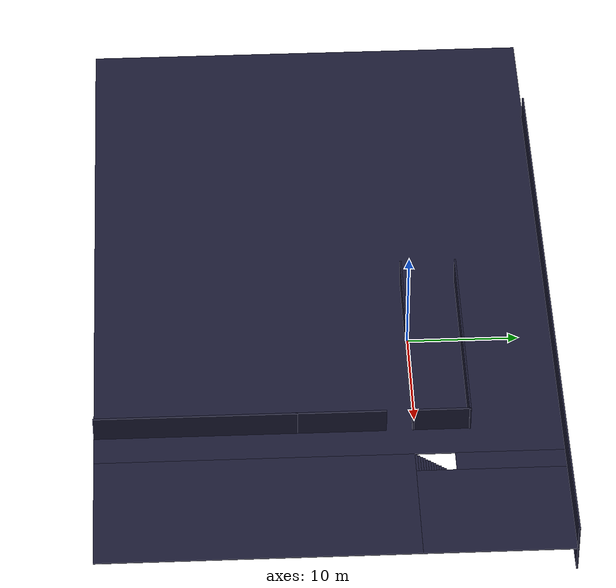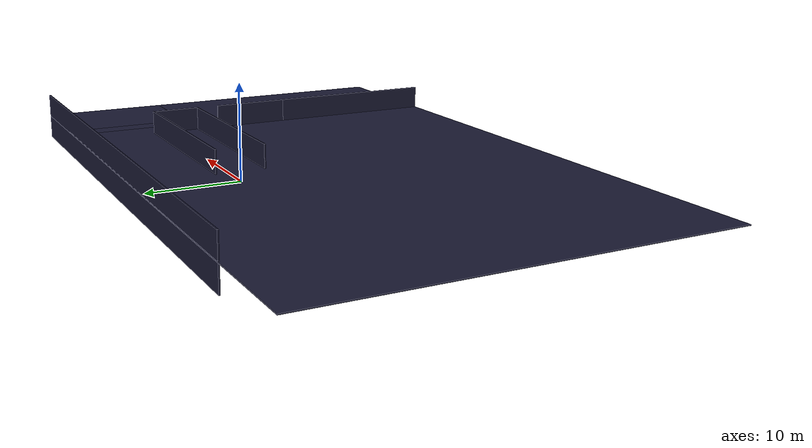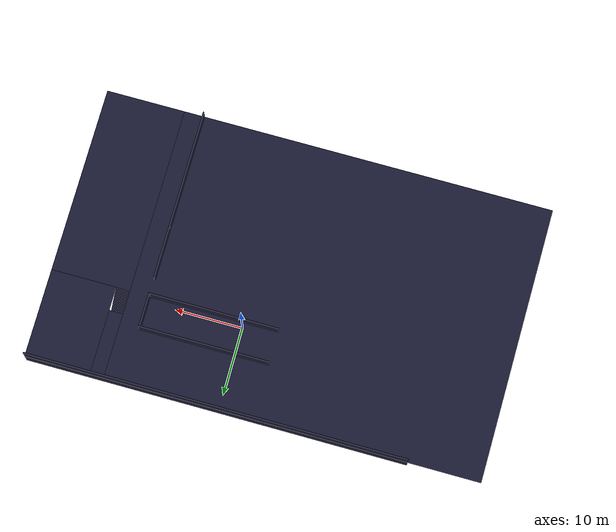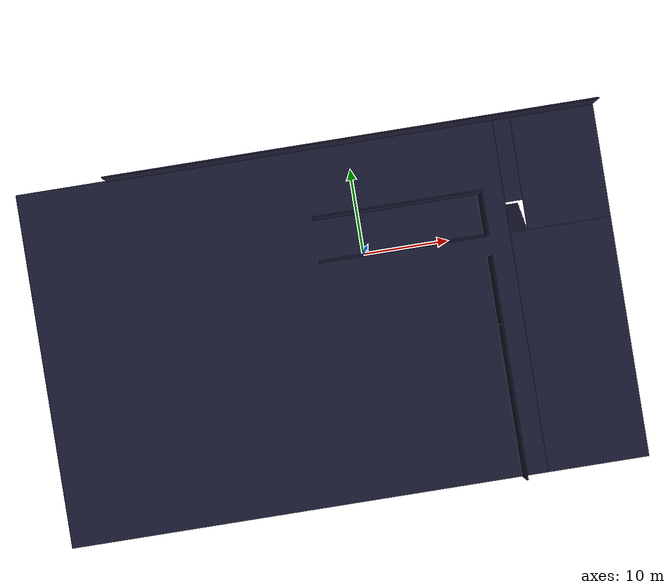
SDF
<sdf version="1.7">
 <model name="2ndo_andar_passarela_escadas_v4">
  <pose>-4.9719 -7.73678 0 0 -0 0</pose>
  <link name="Floor_2">
   <pose>0 0 2.5 0 -0 0</pose>
   <visual name="Floor_2_Visual_0">
    <pose>-5.84149 0 0.05 0 -0 0</pose>
    <geometry><box><size>55.2168 40.95 0.1</size></box></geometry>
    <material>
     <script><uri>file://media/materials/scripts/gazebo.material</uri><name>Gazebo/Grey</name></script>
     <ambient>0.1 0.1 0.1 1</ambient>
     <diffuse>0.1 0.1 0.2 1</diffuse>
     <specular>0 0 0 0</specular>
     <emissive>0 0 0 1</emissive>
    </material>
    <meta><layer>1</layer></meta>
   </visual>
   <collision name="Floor_2_Collision_0">
    <geometry><box><size>55.2168 40.95 0.1</size></box></geometry>
    <pose>-5.84149 0 0.05 0 -0 0</pose>
   </collision>
   <visual name="Floor_2_Visual_1">
    <pose>27.6084 -6.58012 0.05 0 -0 0</pose>
    <geometry><box><size>11.683 27.7898 0.1</size></box></geometry>
    <material>
     <script><uri>file://media/materials/scripts/gazebo.material</uri><name>Gazebo/Grey</name></script>
     <ambient>0.1 0.1 0.1 1</ambient>
     <diffuse>0.1 0.1 0.2 1</diffuse>
     <specular>0 0 0 0</specular>
     <emissive>0 0 0 1</emissive>
    </material>
    <meta><layer>1</layer></meta>
   </visual>
   <collision name="Floor_2_Collision_1">
    <geometry><box><size>11.683 27.7898 0.1</size></box></geometry>
    <pose>27.6084 -6.58012 0.05 0 -0 0</pose>
   </collision>
   <visual name="Floor_2_Visual_2">
    <pose>28.6242 13.8949 0.05 0 -0 0</pose>
    <geometry><box><size>9.65136 13.1602 0.1</size></box></geometry>
    <material>
     <script><uri>file://media/materials/scripts/gazebo.material</uri><name>Gazebo/Grey</name></script>
     <ambient>0.1 0.1 0.1 1</ambient>
     <diffuse>0.1 0.1 0.2 1</diffuse>
     <specular>0 0 0 0</specular>
     <emissive>0 0 0 1</emissive>
    </material>
    <meta><layer>1</layer></meta>
   </visual>
   <collision name="Floor_2_Collision_2">
    <geometry><box><size>9.65136 13.1602 0.1</size></box></geometry>
    <pose>28.6242 13.8949 0.05 0 -0 0</pose>
   </collision>
   <visual name="Floor_2_Visual_3">
    <pose>22.7827 15.6449 0.05 0 -0 0</pose>
    <geometry><box><size>2.03163 9.66024 0.1</size></box></geometry>
    <material>
     <script><uri>file://media/materials/scripts/gazebo.material</uri><name>Gazebo/Grey</name></script>
     <ambient>0.1 0.1 0.1 1</ambient>
     <diffuse>0.1 0.1 0.2 1</diffuse>
     <specular>0 0 0 0</specular>
     <emissive>0 0 0 1</emissive>
    </material>
    <meta><layer>1</layer></meta>
   </visual>
   <collision name="Floor_2_Collision_3">
    <geometry><box><size>2.03163 9.66024 0.1</size></box></geometry>
    <pose>22.7827 15.6449 0.05 0 -0 0</pose>
   </collision>
  </link>
  <link name="Stairs_1">
   <visual name="Stairs_1_Visual_0">
    <pose>22.7827 10.6981 0.083333 0 -0 0</pose>
    <geometry><box><size>2.03163 0.233333 0.166667</size></box></geometry>
    <material>
     <script><uri>file://media/materials/scripts/gazebo.material</uri><name>Gazebo/Grey</name></script>
     <ambient>0.1 0.1 0.1 1</ambient>
     <diffuse>0.1 0.1 0.2 1</diffuse>
     <specular>0 0 0 0</specular>
     <emissive>0 0 0 1</emissive>
    </material>
    <meta><layer>0</layer></meta>
   </visual>
   <collision name="Stairs_1_Collision_0">
    <geometry><box><size>2.03163 0.233333 0.166667</size></box></geometry>
    <pose>22.7827 10.6981 0.083333 0 -0 0</pose>
   </collision>
   <visual name="Stairs_1_Visual_1">
    <pose>22.7827 10.4648 0.25 0 -0 0</pose>
    <geometry><box><size>2.03163 0.233333 0.166667</size></box></geometry>
    <material>
     <script><uri>file://media/materials/scripts/gazebo.material</uri><name>Gazebo/Grey</name></script>
     <ambient>0.1 0.1 0.1 1</ambient>
     <diffuse>0.1 0.1 0.2 1</diffuse>
     <specular>0 0 0 0</specular>
     <emissive>0 0 0 1</emissive>
    </material>
    <meta><layer>0</layer></meta>
   </visual>
   <collision name="Stairs_1_Collision_1">
    <geometry><box><size>2.03163 0.233333 0.166667</size></box></geometry>
    <pose>22.7827 10.4648 0.25 0 -0 0</pose>
   </collision>
   <visual name="Stairs_1_Visual_2">
    <pose>22.7827 10.2314 0.416667 0 -0 0</pose>
    <geometry><box><size>2.03163 0.233333 0.166667</size></box></geometry>
    <material>
     <script><uri>file://media/materials/scripts/gazebo.material</uri><name>Gazebo/Grey</name></script>
     <ambient>0.1 0.1 0.1 1</ambient>
     <diffuse>0.1 0.1 0.2 1</diffuse>
     <specular>0 0 0 0</specular>
     <emissive>0 0 0 1</emissive>
    </material>
    <meta><layer>0</layer></meta>
   </visual>
   <collision name="Stairs_1_Collision_2">
    <geometry><box><size>2.03163 0.233333 0.166667</size></box></geometry>
    <pose>22.7827 10.2314 0.416667 0 -0 0</pose>
   </collision>
   <visual name="Stairs_1_Visual_3">
    <pose>22.7827 9.99809 0.583333 0 -0 0</pose>
    <geometry><box><size>2.03163 0.233333 0.166667</size></box></geometry>
    <material>
     <script><uri>file://media/materials/scripts/gazebo.material</uri><name>Gazebo/Grey</name></script>
     <ambient>0.1 0.1 0.1 1</ambient>
     <diffuse>0.1 0.1 0.2 1</diffuse>
     <specular>0 0 0 0</specular>
     <emissive>0 0 0 1</emissive>
    </material>
    <meta><layer>0</layer></meta>
   </visual>
   <collision name="Stairs_1_Collision_3">
    <geometry><box><size>2.03163 0.233333 0.166667</size></box></geometry>
    <pose>22.7827 9.99809 0.583333 0 -0 0</pose>
   </collision>
   <visual name="Stairs_1_Visual_4">
    <pose>22.7827 9.76476 0.75 0 -0 0</pose>
    <geometry><box><size>2.03163 0.233333 0.166667</size></box></geometry>
    <material>
     <script><uri>file://media/materials/scripts/gazebo.material</uri><name>Gazebo/Grey</name></script>
     <ambient>0.1 0.1 0.1 1</ambient>
     <diffuse>0.1 0.1 0.2 1</diffuse>
     <specular>0 0 0 0</specular>
     <emissive>0 0 0 1</emissive>
    </material>
    <meta><layer>0</layer></meta>
   </visual>
   <collision name="Stairs_1_Collision_4">
    <geometry><box><size>2.03163 0.233333 0.166667</size></box></geometry>
    <pose>22.7827 9.76476 0.75 0 -0 0</pose>
   </collision>
   <visual name="Stairs_1_Visual_5">
    <pose>22.7827 9.53143 0.916667 0 -0 0</pose>
    <geometry><box><size>2.03163 0.233333 0.166667</size></box></geometry>
    <material>
     <script><uri>file://media/materials/scripts/gazebo.material</uri><name>Gazebo/Grey</name></script>
     <ambient>0.1 0.1 0.1 1</ambient>
     <diffuse>0.1 0.1 0.2 1</diffuse>
     <specular>0 0 0 0</specular>
     <emissive>0 0 0 1</emissive>
    </material>
    <meta><layer>0</layer></meta>
   </visual>
   <collision name="Stairs_1_Collision_5">
    <geometry><box><size>2.03163 0.233333 0.166667</size></box></geometry>
    <pose>22.7827 9.53143 0.916667 0 -0 0</pose>
   </collision>
   <visual name="Stairs_1_Visual_6">
    <pose>22.7827 9.29809 1.08333 0 -0 0</pose>
    <geometry><box><size>2.03163 0.233333 0.166667</size></box></geometry>
    <material>
     <script><uri>file://media/materials/scripts/gazebo.material</uri><name>Gazebo/Grey</name></script>
     <ambient>0.1 0.1 0.1 1</ambient>
     <diffuse>0.1 0.1 0.2 1</diffuse>
     <specular>0 0 0 0</specular>
     <emissive>0 0 0 1</emissive>
    </material>
    <meta><layer>0</layer></meta>
   </visual>
   <collision name="Stairs_1_Collision_6">
    <geometry><box><size>2.03163 0.233333 0.166667</size></box></geometry>
    <pose>22.7827 9.29809 1.08333 0 -0 0</pose>
   </collision>
   <visual name="Stairs_1_Visual_7">
    <pose>22.7827 9.06476 1.25 0 -0 0</pose>
    <geometry><box><size>2.03163 0.233333 0.166667</size></box></geometry>
    <material>
     <script><uri>file://media/materials/scripts/gazebo.material</uri><name>Gazebo/Grey</name></script>
     <ambient>0.1 0.1 0.1 1</ambient>
     <diffuse>0.1 0.1 0.2 1</diffuse>
     <specular>0 0 0 0</specular>
     <emissive>0 0 0 1</emissive>
    </material>
    <meta><layer>0</layer></meta>
   </visual>
   <collision name="Stairs_1_Collision_7">
    <geometry><box><size>2.03163 0.233333 0.166667</size></box></geometry>
    <pose>22.7827 9.06476 1.25 0 -0 0</pose>
   </collision>
   <visual name="Stairs_1_Visual_8">
    <pose>22.7827 8.83143 1.41667 0 -0 0</pose>
    <geometry><box><size>2.03163 0.233333 0.166667</size></box></geometry>
    <material>
     <script><uri>file://media/materials/scripts/gazebo.material</uri><name>Gazebo/Grey</name></script>
     <ambient>0.1 0.1 0.1 1</ambient>
     <diffuse>0.1 0.1 0.2 1</diffuse>
     <specular>0 0 0 0</specular>
     <emissive>0 0 0 1</emissive>
    </material>
    <meta><layer>0</layer></meta>
   </visual>
   <collision name="Stairs_1_Collision_8">
    <geometry><box><size>2.03163 0.233333 0.166667</size></box></geometry>
    <pose>22.7827 8.83143 1.41667 0 -0 0</pose>
   </collision>
   <visual name="Stairs_1_Visual_9">
    <pose>22.7827 8.59809 1.58333 0 -0 0</pose>
    <geometry><box><size>2.03163 0.233333 0.166667</size></box></geometry>
    <material>
     <script><uri>file://media/materials/scripts/gazebo.material</uri><name>Gazebo/Grey</name></script>
     <ambient>0.1 0.1 0.1 1</ambient>
     <diffuse>0.1 0.1 0.2 1</diffuse>
     <specular>0 0 0 0</specular>
     <emissive>0 0 0 1</emissive>
    </material>
    <meta><layer>0</layer></meta>
   </visual>
   <collision name="Stairs_1_Collision_9">
    <geometry><box><size>2.03163 0.233333 0.166667</size></box></geometry>
    <pose>22.7827 8.59809 1.58333 0 -0 0</pose>
   </collision>
   <visual name="Stairs_1_Visual_10">
    <pose>22.7827 8.36476 1.75 0 -0 0</pose>
    <geometry><box><size>2.03163 0.233333 0.166667</size></box></geometry>
    <material>
     <script><uri>file://media/materials/scripts/gazebo.material</uri><name>Gazebo/Grey</name></script>
     <ambient>0.1 0.1 0.1 1</ambient>
     <diffuse>0.1 0.1 0.2 1</diffuse>
     <specular>0 0 0 0</specular>
     <emissive>0 0 0 1</emissive>
    </material>
    <meta><layer>0</layer></meta>
   </visual>
   <collision name="Stairs_1_Collision_10">
    <geometry><box><size>2.03163 0.233333 0.166667</size></box></geometry>
    <pose>22.7827 8.36476 1.75 0 -0 0</pose>
   </collision>
   <visual name="Stairs_1_Visual_11">
    <pose>22.7827 8.13143 1.91667 0 -0 0</pose>
    <geometry><box><size>2.03163 0.233333 0.166667</size></box></geometry>
    <material>
     <script><uri>file://media/materials/scripts/gazebo.material</uri><name>Gazebo/Grey</name></script>
     <ambient>0.1 0.1 0.1 1</ambient>
     <diffuse>0.1 0.1 0.2 1</diffuse>
     <specular>0 0 0 0</specular>
     <emissive>0 0 0 1</emissive>
    </material>
    <meta><layer>0</layer></meta>
   </visual>
   <collision name="Stairs_1_Collision_11">
    <geometry><box><size>2.03163 0.233333 0.166667</size></box></geometry>
    <pose>22.7827 8.13143 1.91667 0 -0 0</pose>
   </collision>
   <visual name="Stairs_1_Visual_12">
    <pose>22.7827 7.89809 2.08333 0 -0 0</pose>
    <geometry><box><size>2.03163 0.233333 0.166667</size></box></geometry>
    <material>
     <script><uri>file://media/materials/scripts/gazebo.material</uri><name>Gazebo/Grey</name></script>
     <ambient>0.1 0.1 0.1 1</ambient>
     <diffuse>0.1 0.1 0.2 1</diffuse>
     <specular>0 0 0 0</specular>
     <emissive>0 0 0 1</emissive>
    </material>
    <meta><layer>0</layer></meta>
   </visual>
   <collision name="Stairs_1_Collision_12">
    <geometry><box><size>2.03163 0.233333 0.166667</size></box></geometry>
    <pose>22.7827 7.89809 2.08333 0 -0 0</pose>
   </collision>
   <visual name="Stairs_1_Visual_13">
    <pose>22.7827 7.66476 2.25 0 -0 0</pose>
    <geometry><box><size>2.03163 0.233333 0.166667</size></box></geometry>
    <material>
     <script><uri>file://media/materials/scripts/gazebo.material</uri><name>Gazebo/Grey</name></script>
     <ambient>0.1 0.1 0.1 1</ambient>
     <diffuse>0.1 0.1 0.2 1</diffuse>
     <specular>0 0 0 0</specular>
     <emissive>0 0 0 1</emissive>
    </material>
    <meta><layer>0</layer></meta>
   </visual>
   <collision name="Stairs_1_Collision_13">
    <geometry><box><size>2.03163 0.233333 0.166667</size></box></geometry>
    <pose>22.7827 7.66476 2.25 0 -0 0</pose>
   </collision>
   <visual name="Stairs_1_Visual_14">
    <pose>22.7827 7.43143 2.41667 0 -0 0</pose>
    <geometry><box><size>2.03163 0.233333 0.166667</size></box></geometry>
    <material>
     <script><uri>file://media/materials/scripts/gazebo.material</uri><name>Gazebo/Grey</name></script>
     <ambient>0.1 0.1 0.1 1</ambient>
     <diffuse>0.1 0.1 0.2 1</diffuse>
     <specular>0 0 0 0</specular>
     <emissive>0 0 0 1</emissive>
    </material>
    <meta><layer>0</layer></meta>
   </visual>
   <collision name="Stairs_1_Collision_14">
    <geometry><box><size>2.03163 0.233333 0.166667</size></box></geometry>
    <pose>22.7827 7.43143 2.41667 0 -0 0</pose>
   </collision>
  </link>
  <link name="Wall_140">
   <collision name="Wall_140_Collision">
    <geometry><box><size>19.25 0.15 2.5</size></box></geometry>
    <pose>0 0 1.25 0 -0 0</pose>
   </collision>
   <visual name="Wall_140_Visual">
    <pose>0 0 1.25 0 -0 0</pose>
    <geometry><box><size>19.25 0.15 2.5</size></box></geometry>
    <material>
     <script><uri>file://media/materials/scripts/gazebo.material</uri><name>Gazebo/Grey</name></script>
     <ambient>0.1 0.1 0.1 1</ambient>
     <diffuse>0.1 0.1 0.2 1</diffuse>
     <specular>0 0 0 0</specular>
     <emissive>0 0 0 1</emissive>
    </material>
    <meta><layer>0</layer></meta>
   </visual>
   <pose>9.2751 7.35 0 0 -0 0</pose>
  </link>
  <link name="Wall_144">
   <collision name="Wall_144_Collision">
    <geometry><box><size>19.25 0.15 2.5</size></box></geometry>
    <pose>0 0 1.25 0 -0 0</pose>
   </collision>
   <visual name="Wall_144_Visual">
    <pose>0 0 1.25 0 -0 0</pose>
    <geometry><box><size>19.25 0.15 2.5</size></box></geometry>
    <material>
     <script><uri>file://media/materials/scripts/gazebo.material</uri><name>Gazebo/Grey</name></script>
     <ambient>0.1 0.1 0.1 1</ambient>
     <diffuse>0.1 0.1 0.2 1</diffuse>
     <specular>0 0 0 0</specular>
     <emissive>0 0 0 1</emissive>
    </material>
    <meta><layer>0</layer></meta>
   </visual>
   <pose>9.2751 12.3 0 0 -0 0</pose>
  </link>
  <link name="Wall_150">
   <collision name="Wall_150_Collision">
    <geometry><box><size>56.2 0.15 2.5</size></box></geometry>
    <pose>0 0 1.25 0 -0 0</pose>
   </collision>
   <visual name="Wall_150_Visual">
    <pose>0 0 1.25 0 -0 0</pose>
    <geometry><box><size>56.2 0.15 2.5</size></box></geometry>
    <material>
     <script><uri>file://media/materials/scripts/gazebo.material</uri><name>Gazebo/Grey</name></script>
     <ambient>0.1 0.1 0.1 1</ambient>
     <diffuse>0.1 0.1 0.2 1</diffuse>
     <specular>0 0 0 0</specular>
     <emissive>0 0 0 1</emissive>
    </material>
    <meta><layer>0</layer></meta>
   </visual>
   <pose>5.3001 20.4 0 0 -0 0</pose>
  </link>
  <link name="Wall_154">
   <collision name="Wall_154_Collision">
    <geometry><box><size>17.75 0.15 2.5</size></box></geometry>
    <pose>0 0 1.25 0 -0 0</pose>
   </collision>
   <visual name="Wall_154_Visual">
    <pose>0 0 1.25 0 -0 0</pose>
    <geometry><box><size>17.75 0.15 2.5</size></box></geometry>
    <material>
     <script><uri>file://media/materials/scripts/gazebo.material</uri><name>Gazebo/Grey</name></script>
     <ambient>0.1 0.1 0.1 1</ambient>
     <diffuse>0.1 0.1 0.2 1</diffuse>
     <specular>0 0 0 0</specular>
     <emissive>0 0 0 1</emissive>
    </material>
    <meta><layer>0</layer></meta>
   </visual>
   <pose>18.7751 -11.6 0 0 -0 -1.5708</pose>
  </link>
  <link name="Wall_2">
   <collision name="Wall_2_Collision">
    <geometry><box><size>7.9 0.15 2.5</size></box></geometry>
    <pose>0 0 1.25 0 -0 0</pose>
   </collision>
   <visual name="Wall_2_Visual">
    <pose>0 0 1.25 0 -0 0</pose>
    <geometry><box><size>7.9 0.15 2.5</size></box></geometry>
    <material>
     <script><uri>file://media/materials/scripts/gazebo.material</uri><name>Gazebo/Grey</name></script>
     <ambient>0.1 0.1 0.1 1</ambient>
     <diffuse>0.1 0.1 0.2 1</diffuse>
     <specular>0 0 0 0</specular>
     <emissive>0 0 0 1</emissive>
    </material>
    <meta><layer>0</layer></meta>
   </visual>
   <pose>18.7751 1.075 0 0 -0 1.5708</pose>
  </link>
  <link name="Wall_217">
   <collision name="Wall_217_Collision">
    <geometry><box><size>7.9 0.15 2.5</size></box></geometry>
    <pose>0 0 1.25 0 -0 0</pose>
   </collision>
   <visual name="Wall_217_Visual">
    <pose>0 0 1.25 0 -0 0</pose>
    <geometry><box><size>7.9 0.15 2.5</size></box></geometry>
    <material>
     <script><uri>file://media/materials/scripts/gazebo.material</uri><name>Gazebo/Grey</name></script>
     <ambient>0.1 0.1 0.1 1</ambient>
     <diffuse>0.1 0.1 0.2 1</diffuse>
     <specular>0 0 0 0</specular>
     <emissive>0 0 0 1</emissive>
    </material>
    <meta><layer>1</layer></meta>
   </visual>
   <pose>18.7751 1.075 2.5 0 -0 1.5708</pose>
  </link>
  <link name="Wall_237">
   <collision name="Wall_237_Collision">
    <geometry><box><size>5.09978 0.15 2.5</size></box></geometry>
    <pose>0 0 1.25 0 -0 0</pose>
   </collision>
   <visual name="Wall_237_Visual">
    <pose>0 0 1.25 0 -0 0</pose>
    <geometry><box><size>5.09978 0.15 2.5</size></box></geometry>
    <material>
     <script><uri>file://media/materials/scripts/gazebo.material</uri><name>Gazebo/Grey</name></script>
     <ambient>0.1 0.1 0.1 1</ambient>
     <diffuse>0.1 0.1 0.2 1</diffuse>
     <specular>0 0 0 0</specular>
     <emissive>0 0 0 1</emissive>
    </material>
    <meta><layer>1</layer></meta>
   </visual>
   <pose>18.775 9.82489 2.5 0 -0 1.57084</pose>
  </link>
  <link name="Wall_255">
   <collision name="Wall_255_Collision">
    <geometry><box><size>19.25 0.15 2.5</size></box></geometry>
    <pose>0 0 1.25 0 -0 0</pose>
   </collision>
   <visual name="Wall_255_Visual">
    <pose>0 0 1.25 0 -0 0</pose>
    <geometry><box><size>19.25 0.15 2.5</size></box></geometry>
    <material>
     <script><uri>file://media/materials/scripts/gazebo.material</uri><name>Gazebo/Grey</name></script>
     <ambient>0.1 0.1 0.1 1</ambient>
     <diffuse>0.1 0.1 0.2 1</diffuse>
     <specular>0 0 0 0</specular>
     <emissive>0 0 0 1</emissive>
    </material>
    <meta><layer>1</layer></meta>
   </visual>
   <pose>9.275 7.34989 2.5 0 -0 -1.2e-05</pose>
  </link>
  <link name="Wall_257">
   <collision name="Wall_257_Collision">
    <geometry><box><size>19.25 0.15 2.5</size></box></geometry>
    <pose>0 0 1.25 0 -0 0</pose>
   </collision>
   <visual name="Wall_257_Visual">
    <pose>0 0 1.25 0 -0 0</pose>
    <geometry><box><size>19.25 0.15 2.5</size></box></geometry>
    <material>
     <script><uri>file://media/materials/scripts/gazebo.material</uri><name>Gazebo/Grey</name></script>
     <ambient>0.1 0.1 0.1 1</ambient>
     <diffuse>0.1 0.1 0.2 1</diffuse>
     <specular>0 0 0 0</specular>
     <emissive>0 0 0 1</emissive>
    </material>
    <meta><layer>1</layer></meta>
   </visual>
   <pose>9.275 12.2999 2.5 0 -0 -1.2e-05</pose>
  </link>
  <link name="Wall_259">
   <collision name="Wall_259_Collision">
    <geometry><box><size>56.2 0.15 2.5</size></box></geometry>
    <pose>0 0 1.25 0 -0 0</pose>
   </collision>
   <visual name="Wall_259_Visual">
    <pose>0 0 1.25 0 -0 0</pose>
    <geometry><box><size>56.2 0.15 2.5</size></box></geometry>
    <material>
     <script><uri>file://media/materials/scripts/gazebo.material</uri><name>Gazebo/Grey</name></script>
     <ambient>0.1 0.1 0.1 1</ambient>
     <diffuse>0.1 0.1 0.2 1</diffuse>
     <specular>0 0 0 0</specular>
     <emissive>0 0 0 1</emissive>
    </material>
    <meta><layer>1</layer></meta>
   </visual>
   <pose>5.3001 20.4 2.5 0 -0 0</pose>
  </link>
  <link name="Wall_261">
   <collision name="Wall_261_Collision">
    <geometry><box><size>17.75 0.15 2.5</size></box></geometry>
    <pose>0 0 1.25 0 -0 0</pose>
   </collision>
   <visual name="Wall_261_Visual">
    <pose>0 0 1.25 0 -0 0</pose>
    <geometry><box><size>17.75 0.15 2.5</size></box></geometry>
    <material>
     <script><uri>file://media/materials/scripts/gazebo.material</uri><name>Gazebo/Grey</name></script>
     <ambient>0.1 0.1 0.1 1</ambient>
     <diffuse>0.1 0.1 0.2 1</diffuse>
     <specular>0 0 0 0</specular>
     <emissive>0 0 0 1</emissive>
    </material>
    <meta><layer>1</layer></meta>
   </visual>
   <pose>18.7751 -11.6 2.5 0 -0 -1.5708</pose>
  </link>
  <link name="Wall_82">
   <collision name="Wall_82_Collision">
    <geometry><box><size>5.09978 0.15 2.5</size></box></geometry>
    <pose>0 0 1.25 0 -0 0</pose>
   </collision>
   <visual name="Wall_82_Visual">
    <pose>0 0 1.25 0 -0 0</pose>
    <geometry><box><size>5.09978 0.15 2.5</size></box></geometry>
    <material>
     <script><uri>file://media/materials/scripts/gazebo.material</uri><name>Gazebo/Grey</name></script>
     <ambient>0.1 0.1 0.1 1</ambient>
     <diffuse>0.1 0.1 0.2 1</diffuse>
     <specular>0 0 0 0</specular>
     <emissive>0 0 0 1</emissive>
    </material>
    <meta><layer>0</layer></meta>
   </visual>
   <pose>18.775 9.82489 0 0 -0 1.57084</pose>
  </link>
  <static>1</static>
 </model>
</sdf>
